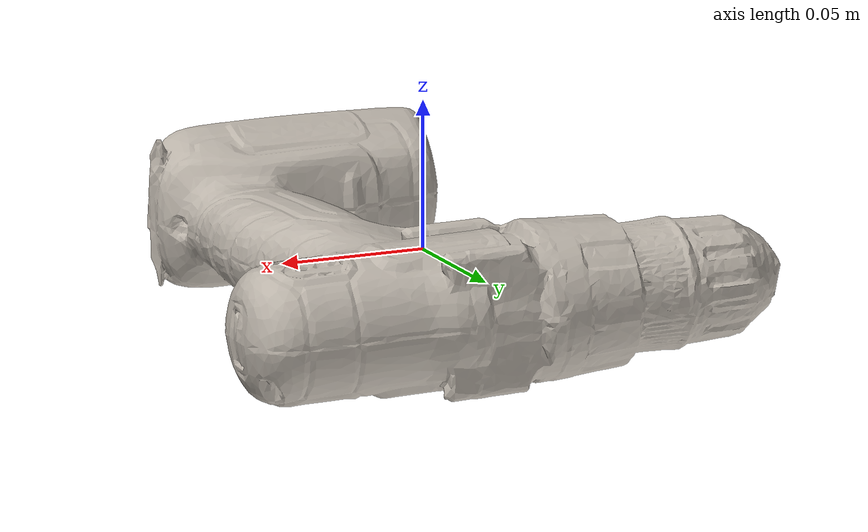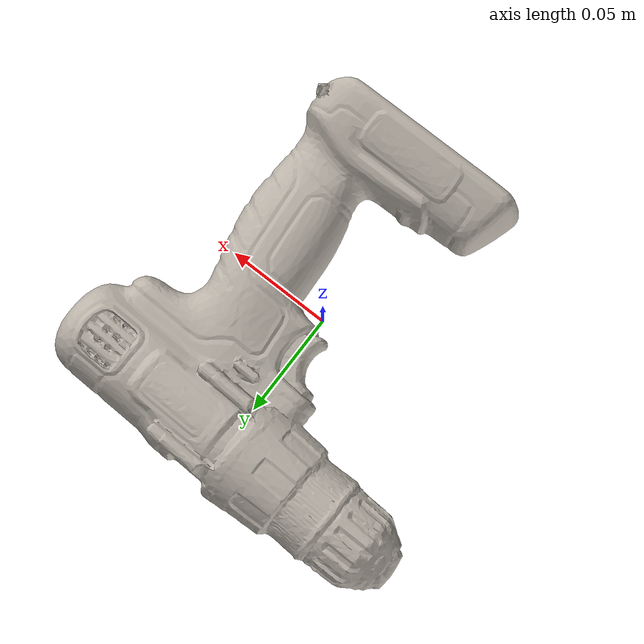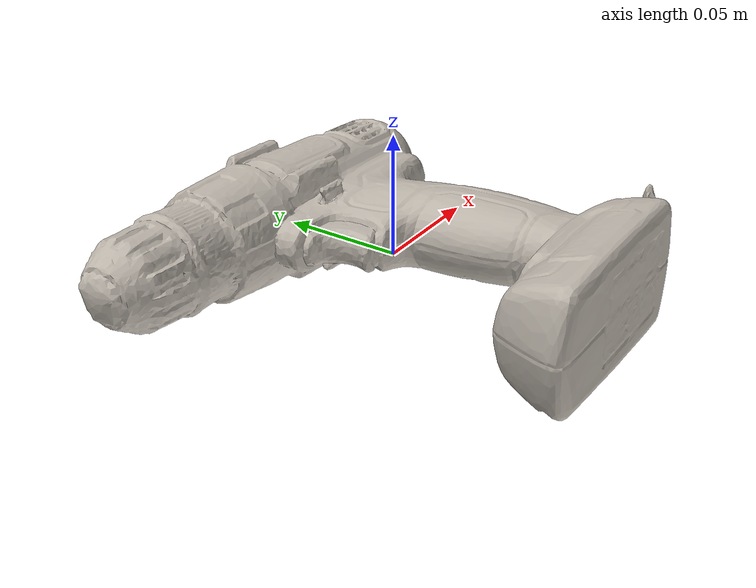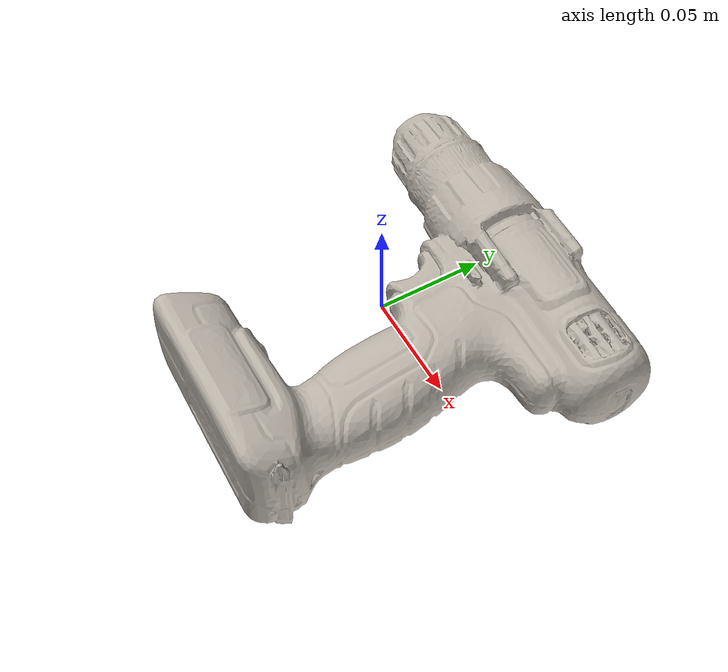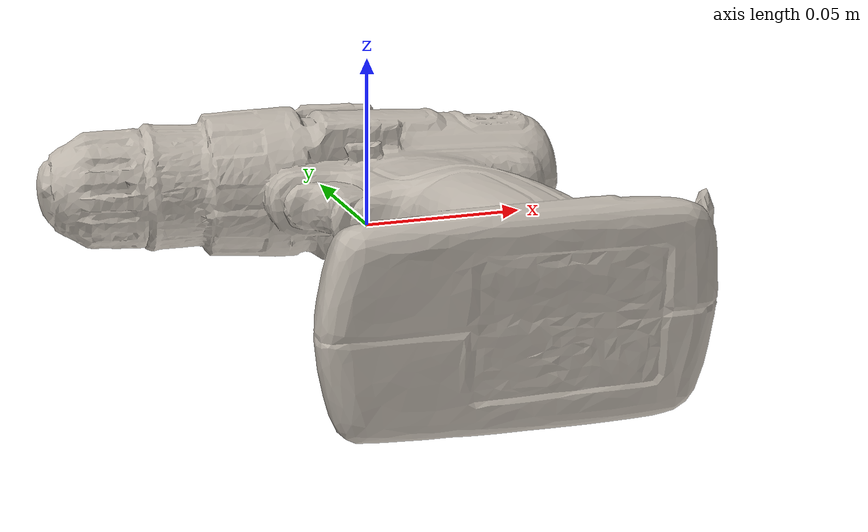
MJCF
<mujoco model="power_drill">
  <default>
    <default class="visual">
      <geom group="1" type="mesh" contype="0" conaffinity="0"/>
    </default>
    <default class="collision">
      <geom group="0" type="mesh"/>
    </default>
  </default>
  <asset>
    <texture type="2d" name="power_drill" file="power_drill.png"/>
    <material name="power_drill" texture="power_drill" specular="0.4000000000000001" shininess="0.001"/>
    <mesh name="power_drill" file="power_drill.obj"/>
  </asset>
  <worldbody>
    <body>
	    <body name="object">
	      <geom material="power_drill" mesh="power_drill" class="visual"/>
	      <geom mesh="power_drill" class="collision"/>
	    </body>
	      <site rgba="0 0 0 0" size="0.005" pos="0 0 -0.04" name="bottom_site" />
	      <site rgba="0 0 0 0" size="0.005" pos="0 0 0.04" name="top_site" />
	      <site rgba="0 0 0 0" size="0.005" pos="0.005 0.005 0" name="horizontal_radius_site" />
    </body>
  </worldbody>
</mujoco>
